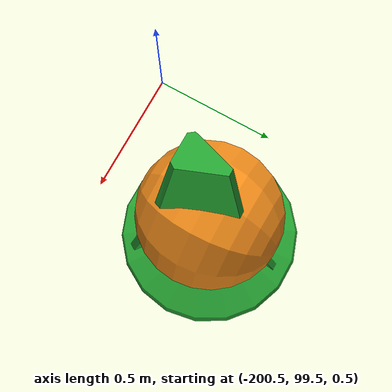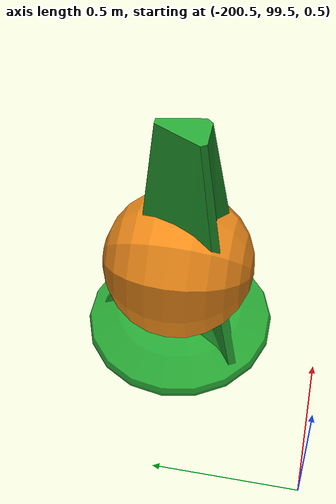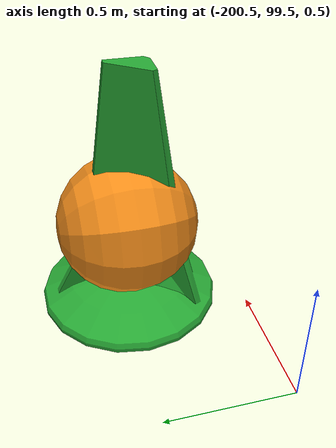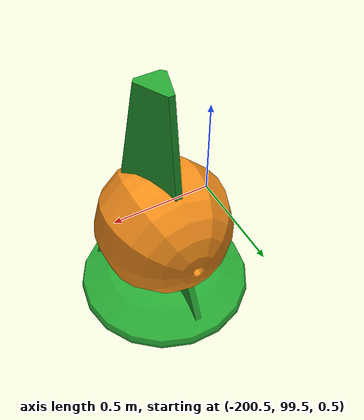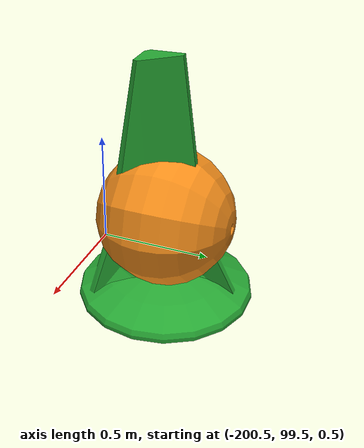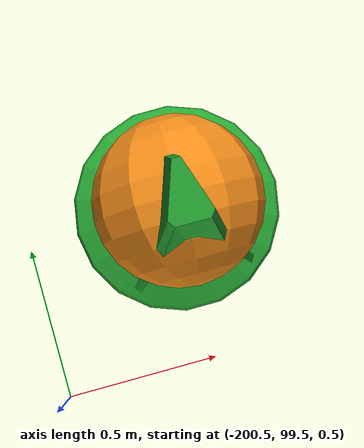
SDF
<sdf version="1.6">
 <world name="robotx_example_course">
  <spherical_coordinates>
   <surface_model>EARTH_WGS84</surface_model>
   <world_frame_orientation>ENU</world_frame_orientation>
   <latitude_deg>-33.724223</latitude_deg>
   <longitude_deg>150.679736</longitude_deg>
   <elevation>0.0</elevation>
   <heading_deg>0.0</heading_deg>
  </spherical_coordinates>
  <include><uri>model://sun</uri></include>
  <include>
   <name>post_0</name>
   <pose>-535.916809 154.362869 0.675884 -0.17182 0.030464 -0.005286</pose>
   <uri>model://post</uri>
  </include>
  <include>
   <name>post_1</name>
   <pose>-527.48999 153.854782 0.425844 -0.1365 0  0</pose>
   <uri>model://post</uri>
  </include>
  <include>
   <name>post_2</name>
   <pose>-544.832825 156.671951 0.499025 -0.162625 0 0</pose>
   <uri>model://post</uri>
  </include>
  <include>
   <name>blue_projectile</name>
   <pose>-545 60 0.03 0 0 0</pose>
   <uri>model://blue_projectile</uri>
  </include>
  <plugin filename="libusv_gazebo_wind_plugin.so" name="wind">
   <wind_obj>
    <name>wamv</name>
    <link_name>wamv/base_link</link_name>
    <coeff_vector>.5 .5 .33</coeff_vector>
   </wind_obj>
   <wind_direction>240</wind_direction>
   <wind_mean_velocity>0.0</wind_mean_velocity>
   <var_wind_gain_constants>0.0</var_wind_gain_constants>
   <var_wind_time_constants>1</var_wind_time_constants>
   <random_seed>10</random_seed>
   <update_rate>10</update_rate>
   <topic_wind_speed>/vrx/debug/wind/speed</topic_wind_speed>
   <topic_wind_direction>/vrx/debug/wind/direction</topic_wind_direction>
  </plugin>
  <scene>
   <sky><clouds><speed>12</speed></clouds></sky>
   <grid>0</grid>
   <origin_visual>0</origin_visual>
   <fog><type>linear</type><color>0.7 0.7 0.7 1</color><density>0.1</density></fog>
   <ambient>0.3 0.3 0.3 1</ambient>
  </scene>
  <include>
   <name>orange_round_0</name>
   <pose>-200 100 1 0 0 0</pose>
   <uri>model://mb_round_buoy_orange</uri>
  </include>
  <include>
   <name>orange_round_1</name>
   <pose>-200 100 1 0 0 0</pose>
   <uri>model://mb_round_buoy_orange</uri>
  </include>
  <include><name>green_0</name><pose>-200 100 1 0 0 0</pose><uri>model://mb_marker_buoy_green</uri></include>
  <include><name>green_1</name><pose>-200 100 1 0 0 0</pose><uri>model://mb_marker_buoy_green</uri></include>
  <include>
   <name>black_round_0</name>
   <pose>-200 100 1 0 0 0</pose>
   <uri>model://mb_round_buoy_black</uri>
  </include>
  <include>
   <name>black_round_1</name>
   <pose>-200 100 1 0 0 0</pose>
   <uri>model://mb_round_buoy_black</uri>
  </include>
  <include>
   <name>black_round_2</name>
   <pose>-200 100 1 0 0 0</pose>
   <uri>model://mb_round_buoy_black</uri>
  </include>
  <include>
   <name>black_round_3</name>
   <pose>-200 100 1 0 0 0</pose>
   <uri>model://mb_round_buoy_black</uri>
  </include>
  <include><name>white_0</name><pose>-200 100 1 0 0 0</pose><uri>model://mb_marker_buoy_white</uri></include>
  <include><name>white_1</name><pose>-200 100 1 0 0 0</pose><uri>model://mb_marker_buoy_white</uri></include>
  <include><name>black_0</name><pose>-200 100 1 0 0 0</pose><uri>model://mb_marker_buoy_black</uri></include>
  <include><name>black_1</name><pose>-200 100 1 0 0 0</pose><uri>model://mb_marker_buoy_black</uri></include>
  <include><name>red_0</name><pose>-200 100 1 0 0 0</pose><uri>model://mb_marker_buoy_red</uri></include>
  <include><name>red_1</name><pose>-200 100 1 0 0 0</pose><uri>model://mb_marker_buoy_red</uri></include>
  <include><name>red_2</name><pose>-200 100 1 0 0 0</pose><uri>model://mb_marker_buoy_red</uri></include>
  <plugin filename="libperception_scoring_plugin.so" name="perception_scoring_plugin">
   <vehicle>wamv</vehicle>
   <task_name>perception</task_name>
   <initial_state_duration>10.0</initial_state_duration>
   <ready_state_duration>10.0</ready_state_duration>
   <running_state_duration>300</running_state_duration>
   <task_info_topic>/vrx/task/info</task_info_topic>
   <contact_debug_topic>/vrx/debug/contact</contact_debug_topic>
   <landmark_topic>/vrx/perception/landmark</landmark_topic>
   <per_plugin_exit_on_completion>true</per_plugin_exit_on_completion>
   <loop_forever>false</loop_forever>
   <frame>wamv</frame>
   <object_sequence>
    <object>
     <time>5.0</time>
     <type>mb_marker_buoy_green</type>
     <name>green_0</name>
     <pose>25 5 0.7 0 0 0</pose>
    </object>
    <object>
     <time>5.0</time>
     <type>mb_marker_buoy_green</type>
     <name>green_1</name>
     <pose>23 4.0 0.7 0 0 0</pose>
    </object>
    <object><time>5.0</time><type>mb_marker_buoy_red</type><name>red_0</name><pose>15 -7 0.7 0 0 0</pose></object>
    <object><time>5.0</time><type>mb_marker_buoy_red</type><name>red_1</name><pose>18 -2 0.7 0 0 0</pose></object>
    <object>
     <time>15.0</time>
     <type>mb_round_buoy_orange</type>
     <name>orange_round_0</name>
     <pose>9 0.4 0.4 0 0 0</pose>
    </object>
    <object>
     <time>15.0</time>
     <type>mb_round_buoy_black</type>
     <name>black_round_0</name>
     <pose>12.3 -1.0 0.4 0 0 0</pose>
    </object>
    <object>
     <time>15.0</time>
     <type>mb_round_buoy_black</type>
     <name>black_round_1</name>
     <pose>12.3 1.7 0.4 0 0 0</pose>
    </object>
    <object>
     <time>15.0</time>
     <type>mb_round_buoy_black</type>
     <name>black_round_2</name>
     <pose>13.7 0.2 0.4 0 0 0</pose>
    </object>
    <object>
     <time>15.0</time>
     <type>mb_round_buoy_black</type>
     <name>black_round_3</name>
     <pose>8.0 3.5 0.4 0 0 0</pose>
    </object>
    <object>
     <time>25.0</time>
     <type>mb_marker_buoy_black</type>
     <name>black_0</name>
     <pose>10 -0.15 0.3 0 0 0</pose>
    </object>
    <object>
     <time>25.0</time>
     <type>mb_marker_buoy_green</type>
     <name>green_0</name>
     <pose>12.5 -0.7 0.3 0 0 0</pose>
    </object>
    <object>
     <time>25.0</time>
     <type>mb_round_buoy_black</type>
     <name>black_round_0</name>
     <pose>7.0 -1.85 0.3 0 0 0</pose>
    </object>
    <object>
     <time>25.0</time>
     <type>mb_marker_buoy_green</type>
     <name>green_1</name>
     <pose>10.8 -3.7 0.3 0 0 0</pose>
    </object>
    <object>
     <time>25.0</time>
     <type>mb_marker_buoy_black</type>
     <name>black_1</name>
     <pose>6.4 -2.1 0.3 0 0 0</pose>
    </object>
    <object>
     <time>25.0</time>
     <type>mb_round_buoy_black</type>
     <name>black_round_1</name>
     <pose>4.4 -0.43 0.3 0 0 0</pose>
    </object>
    <object>
     <time>35.0</time>
     <type>mb_marker_buoy_white</type>
     <name>white_0</name>
     <pose>5.3 -0.6 0.7 0 0 0</pose>
    </object>
    <object>
     <time>35.0</time>
     <type>mb_marker_buoy_red</type>
     <name>red_0</name>
     <pose>7.0 -1.1 0.7 0 0 0</pose>
    </object>
    <object>
     <time>35.0</time>
     <type>mb_marker_buoy_red</type>
     <name>red_1</name>
     <pose>17 -2.0 0.7 0 0 0</pose>
    </object>
    <object>
     <time>35.0</time>
     <type>mb_marker_buoy_red</type>
     <name>red_2</name>
     <pose>30 -0.99 0.7 0 0 0</pose>
    </object>
   </object_sequence>
  </plugin>
 </world>
</sdf>

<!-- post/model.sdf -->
<sdf version="1.6">
  <model name="post">
    <static>true</static>
    <pose>0 0 0 0 0 0</pose>
    <link name="base_link">
      <visual name="visual_1">
        <geometry>
          <box>
            <size>1 0.2 0.2</size>
          </box>
        </geometry>
      </visual>
      <visual name="visual_2">
        <pose>0.4 0 0 0 0 0</pose>
        <geometry>
          <box>
            <size>0.4 0.4 0.4</size>
          </box>
        </geometry>
      </visual>
      <collision name="collision">
        <pose>0 0 0.5 0 0 0</pose>
        <geometry>
          <box>
            <size>1 0.2 1</size>
          </box>
        </geometry>
      </collision>
    </link>
  </model>
</sdf>

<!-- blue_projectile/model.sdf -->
<sdf version="1.6">
  <model name="blue_projectile">
    <link name="link">
      <inertial>
        <mass>0.04</mass>
        <!-- Mark only - based on cylinder -->
        <inertia>
          <ixx>0.00002166</ixx>
          <ixy>0</ixy>
          <ixz>0</ixz>
          <iyy>00002166</iyy>
          <iyz>0</iyz>
          <izz>00002166</izz>
        </inertia>
      </inertial>
      <collision name="collision">
        <geometry>
          <sphere>
            <radius>0.0285</radius>
          </sphere>
        </geometry>
      </collision>
      <visual name="visual">
        <geometry>
	        <sphere>
            <radius>0.0285</radius>
          </sphere>
        </geometry>
        <material>
          <script>
            <uri>model://blue_projectile/materials/scripts/blue_projectile.material</uri>
            <name>blue_projectile/Blue</name>
          </script>
        </material>
      </visual>
    </link>
    <plugin name="BuoyancyPlugin" filename="libbuoyancy_gazebo_plugin.so">
      <wave_model>ocean_waves</wave_model>
      <fluid_density>1000</fluid_density>
      <fluid_level>0.0</fluid_level>
      <linear_drag>25.0</linear_drag>
      <angular_drag>2.0</angular_drag>
      <buoyancy name="buoyancy_sphere">
        <link_name>link</link_name>
        <pose>0 0 -0.02 0 0 0</pose>
        <geometry>
          <sphere>
            <radius>0.0285</radius>
          </sphere>
        </geometry>
      </buoyancy>
    </plugin>
  </model>
</sdf>

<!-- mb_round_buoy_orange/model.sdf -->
<sdf version="1.6">
  <model name="mb_round_buoy_orange">
    <link name="link">
      <inertial>
        <pose>0 0 -2 0 0 0</pose>
        <!-- Mass determined based on buoyancy geometry so object
             floats at mid-point of sphere -->
        <mass>3.5</mass>
        <!-- Mark only - based on cylinder -->
        <inertia>
          <ixx>1.0</ixx>
          <ixy>0</ixy>
          <ixz>0</ixz>
          <iyy>1.0</iyy>
          <iyz>0</iyz>
          <izz>0.1</izz>
        </inertia>
      </inertial>
      <collision name="collision">
        <geometry>
          <sphere>
            <radius>0.25</radius>
          </sphere>
        </geometry>
      </collision>
      <visual name="visual">
        <geometry>
	        <mesh><uri>model://mb_round_buoy_orange/meshes/mb_round_buoy.dae</uri></mesh>
        </geometry>
        <material>
          <script>
            <uri>model://mb_round_buoy_orange/materials/scripts/mb_round_buoy.material</uri>
            <name>mb_round_buoy/Orange</name>
          </script>
        </material>
      </visual>
    </link>
    <plugin name="BuoyancyPlugin" filename="libbuoyancy_gazebo_plugin.so">
      <wave_model>ocean_waves</wave_model>
      <fluid_density>1000</fluid_density>
      <fluid_level>0.0</fluid_level>
      <linear_drag>25.0</linear_drag>
      <angular_drag>2.0</angular_drag>
      <buoyancy name="buoyancy_sphere">
        <link_name>link</link_name>
        <pose>0 0 0.02 0 0 0</pose>
        <geometry>
          <sphere>
            <radius>0.235</radius>
          </sphere>
        </geometry>
      </buoyancy>
    </plugin>
  </model>
</sdf>

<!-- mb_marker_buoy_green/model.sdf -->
<sdf version="1.6">
  <model name="mb_marker_buoy_green">
    <link name="link">
      <inertial>
        <pose>0 0 -2 0 0 0</pose>
        <!-- Mass determined based on buoyancy geometry so object
             floats at mid-point of sphere -->
        <mass>20</mass>
        <!-- Mark only - based on cylinder -->
        <inertia>
          <ixx>1.0</ixx>
          <ixy>0</ixy>
          <ixz>0</ixz>
          <iyy>1.0</iyy>
          <iyz>0</iyz>
          <izz>0.1</izz>
        </inertia>
      </inertial>
      <collision name="collision_inner">
        <pose>0 -0.02 0.02 0 0 0</pose>
        <geometry>
          <cylinder>
            <radius>0.15</radius>
            <length>1.15</length>
          </cylinder>
        </geometry>
      </collision>
      <collision name="collision_outer">
        <pose>0 0 -0.3 0 0 0</pose>
        <geometry>
          <cylinder>
            <radius>0.325</radius>
            <length>0.1</length>
          </cylinder>
        </geometry>
      </collision>
      <visual name="visual">
        <pose>0 0 0 1.57079 0 0</pose>
        <geometry>
	        <mesh><uri>model://mb_marker_buoy_red/meshes/mb_marker_buoy.dae</uri></mesh>
        </geometry>
        <material>
          <script>
            <uri>model://mb_marker_buoy_green/materials/scripts/mb_marker_buoy.material</uri>
            <name>mb_marker_buoy/Green</name>
          </script>
        </material>
      </visual>
    </link>
    <plugin name="BuoyancyPlugin" filename="libbuoyancy_gazebo_plugin.so">
      <wave_model>ocean_waves</wave_model>
      <fluid_density>1000</fluid_density>
      <fluid_level>0.0</fluid_level>
      <linear_drag>25.0</linear_drag>
      <angular_drag>2.0</angular_drag>
      <buoyancy name="buoyancy_sphere">
        <link_name>link</link_name>
        <pose>0 0 -0.12 0 0 0</pose>
        <geometry>
          <sphere>
            <radius>0.325</radius>
          </sphere>
        </geometry>
      </buoyancy>
    </plugin>
  </model>
</sdf>

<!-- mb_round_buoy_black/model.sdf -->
<sdf version="1.6">
  <model name="mb_round_buoy_black">
    <link name="link">
      <inertial>
        <pose>0 0 -2 0 0 0</pose>
        <!-- Mass determined based on buoyancy geometry so object
             floats at mid-point of sphere -->
        <mass>3.5</mass>
        <!-- Mark only - based on cylinder -->
        <inertia>
          <ixx>1.0</ixx>
          <ixy>0</ixy>
          <ixz>0</ixz>
          <iyy>1.0</iyy>
          <iyz>0</iyz>
          <izz>0.1</izz>
        </inertia>
      </inertial>
      <collision name="collision">
        <geometry>
          <sphere>
            <radius>0.25</radius>
          </sphere>
        </geometry>
      </collision>
      <visual name="visual">
        <geometry>
	        <mesh><uri>model://mb_round_buoy_orange/meshes/mb_round_buoy.dae</uri></mesh>
        </geometry>
        <material>
          <script>
            <uri>file://media/materials/scripts/gazebo.material</uri>
            <name>Gazebo/Black</name>
          </script>
        </material>
      </visual>
    </link>
    <plugin name="BuoyancyPlugin" filename="libbuoyancy_gazebo_plugin.so">
      <wave_model>ocean_waves</wave_model>
      <fluid_density>1000</fluid_density>
      <fluid_level>0.0</fluid_level>
      <linear_drag>25.0</linear_drag>
      <angular_drag>2.0</angular_drag>
      <buoyancy name="buoyancy_sphere">
        <link_name>link</link_name>
        <pose>0 0 0.02 0 0 0</pose>
        <geometry>
          <sphere>
            <radius>0.235</radius>
          </sphere>
        </geometry>
      </buoyancy>
    </plugin>
  </model>
</sdf>

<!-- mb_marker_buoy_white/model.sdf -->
<sdf version="1.6">
  <model name="mb_marker_buoy_white">
    <link name="link">
      <inertial>
        <pose>0 0 -2 0 0 0</pose>
        <!-- Mass determined based on buoyancy geometry so object
             floats at mid-point of sphere -->
        <mass>20</mass>
        <!-- Mark only - based on cylinder -->
        <inertia>
          <ixx>1.0</ixx>
          <ixy>0</ixy>
          <ixz>0</ixz>
          <iyy>1.0</iyy>
          <iyz>0</iyz>
          <izz>0.1</izz>
        </inertia>
      </inertial>
      <collision name="collision_inner">
        <pose>0 -0.02 0.02 0 0 0</pose>
        <geometry>
          <cylinder>
            <radius>0.15</radius>
            <length>1.15</length>
          </cylinder>
        </geometry>
      </collision>
      <collision name="collision_outer">
        <pose>0 0 -0.3 0 0 0</pose>
        <geometry>
          <cylinder>
            <radius>0.325</radius>
            <length>0.1</length>
          </cylinder>
        </geometry>
      </collision>
      <visual name="visual">
        <pose>0 0 0 1.57079 0 0</pose>
        <geometry>
	        <mesh><uri>model://mb_marker_buoy_red/meshes/mb_marker_buoy.dae</uri></mesh>
        </geometry>
        <material>
          <script>
            <uri>file://media/materials/scripts/gazebo.material</uri>
            <name>Gazebo/White</name>
          </script>
        </material>
      </visual>
    </link>
    <plugin name="BuoyancyPlugin" filename="libbuoyancy_gazebo_plugin.so">
      <wave_model>ocean_waves</wave_model>
      <fluid_density>1000</fluid_density>
      <fluid_level>0.0</fluid_level>
      <linear_drag>25.0</linear_drag>
      <angular_drag>2.0</angular_drag>
      <buoyancy name="buoyancy_sphere">
        <link_name>link</link_name>
        <pose>0 0 -0.12 0 0 0</pose>
        <geometry>
          <sphere>
            <radius>0.325</radius>
          </sphere>
        </geometry>
      </buoyancy>
    </plugin>
  </model>
</sdf>

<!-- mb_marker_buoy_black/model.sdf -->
<sdf version="1.6">
  <model name="mb_marker_buoy_black">
    <link name="link">
      <inertial>
        <pose>0 0 -2 0 0 0</pose>
        <!-- Mass determined based on buoyancy geometry so object
             floats at mid-point of sphere -->
        <mass>20</mass>
        <!-- Mark only - based on cylinder -->
        <inertia>
          <ixx>1.0</ixx>
          <ixy>0</ixy>
          <ixz>0</ixz>
          <iyy>1.0</iyy>
          <iyz>0</iyz>
          <izz>0.1</izz>
        </inertia>
      </inertial>
      <collision name="collision_inner">
        <pose>0 -0.02 0.02 0 0 0</pose>
        <geometry>
          <cylinder>
            <radius>0.15</radius>
            <length>1.15</length>
          </cylinder>
        </geometry>
      </collision>
      <collision name="collision_outer">
        <pose>0 0 -0.3 0 0 0</pose>
        <geometry>
          <cylinder>
            <radius>0.325</radius>
            <length>0.1</length>
          </cylinder>
        </geometry>
      </collision>
      <visual name="visual">
        <pose>0 0 0 1.57079 0 0</pose>
        <geometry>
	        <mesh><uri>model://mb_marker_buoy_red/meshes/mb_marker_buoy.dae</uri></mesh>
        </geometry>
        <material>
          <script>
            <uri>file://media/materials/scripts/gazebo.material</uri>
            <name>Gazebo/Black</name>
          </script>
        </material>
      </visual>
    </link>
    <plugin name="BuoyancyPlugin" filename="libbuoyancy_gazebo_plugin.so">
      <wave_model>ocean_waves</wave_model>
      <fluid_density>1000</fluid_density>
      <fluid_level>0.0</fluid_level>
      <linear_drag>25.0</linear_drag>
      <angular_drag>2.0</angular_drag>
      <buoyancy name="buoyancy_sphere">
        <link_name>link</link_name>
        <pose>0 0 -0.12 0 0 0</pose>
        <geometry>
          <sphere>
            <radius>0.325</radius>
          </sphere>
        </geometry>
      </buoyancy>
    </plugin>
  </model>
</sdf>

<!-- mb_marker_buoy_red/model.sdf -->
<sdf version="1.6">
  <model name="mb_marker_buoy_red">
    <link name="link">
      <inertial>
        <pose>0 0 -2 0 0 0</pose>
        <!-- Mass determined based on buoyancy geometry so object
             floats at mid-point of sphere -->
        <mass>20</mass>
        <!-- Mark only - based on cylinder -->
        <inertia>
          <ixx>1.0</ixx>
          <ixy>0</ixy>
          <ixz>0</ixz>
          <iyy>1.0</iyy>
          <iyz>0</iyz>
          <izz>0.1</izz>
        </inertia>
      </inertial>
      <collision name="collision_inner">
        <pose>0 -0.02 0.02 0 0 0</pose>
        <geometry>
          <cylinder>
            <radius>0.15</radius>
            <length>1.15</length>
          </cylinder>
        </geometry>
      </collision>
      <collision name="collision_outer">
        <pose>0 0 -0.3 0 0 0</pose>
        <geometry>
          <cylinder>
            <radius>0.325</radius>
            <length>0.1</length>
          </cylinder>
        </geometry>
      </collision>
      <visual name="visual">
        <pose>0 0 0 1.57079 0 0</pose>
        <geometry>
	        <mesh><uri>model://mb_marker_buoy_red/meshes/mb_marker_buoy.dae</uri></mesh>
        </geometry>
        <material>
          <script>
            <uri>model://mb_marker_buoy_red/materials/scripts/mb_marker_buoy.material</uri>
            <name>mb_marker_buoy/Red</name>
          </script>
        </material>
      </visual>
    </link>
    <plugin name="BuoyancyPlugin" filename="libbuoyancy_gazebo_plugin.so">
      <wave_model>ocean_waves</wave_model>
      <fluid_density>1000</fluid_density>
      <fluid_level>0.0</fluid_level>
      <linear_drag>25.0</linear_drag>
      <angular_drag>2.0</angular_drag>
      <buoyancy name="buoyancy_sphere">
        <link_name>link</link_name>
        <pose>0 0 -0.12 0 0 0</pose>
        <geometry>
          <sphere>
            <radius>0.325</radius>
          </sphere>
        </geometry>
      </buoyancy>
    </plugin>
  </model>
</sdf>
